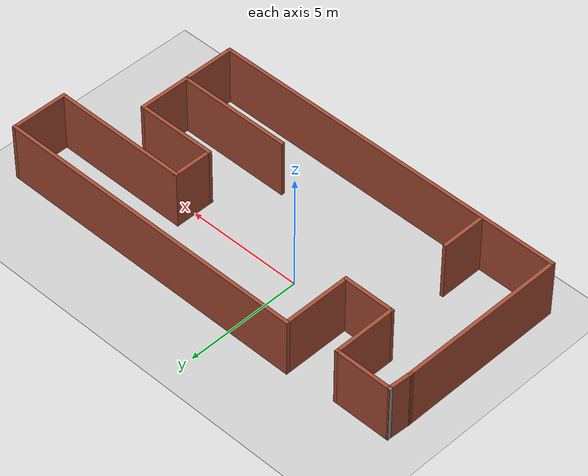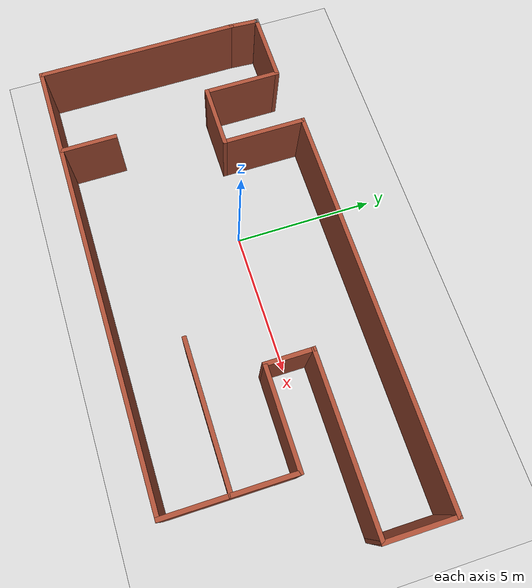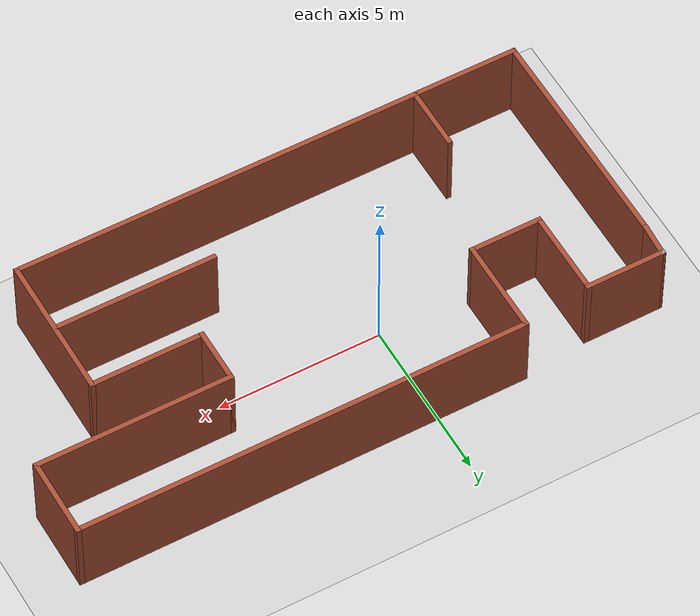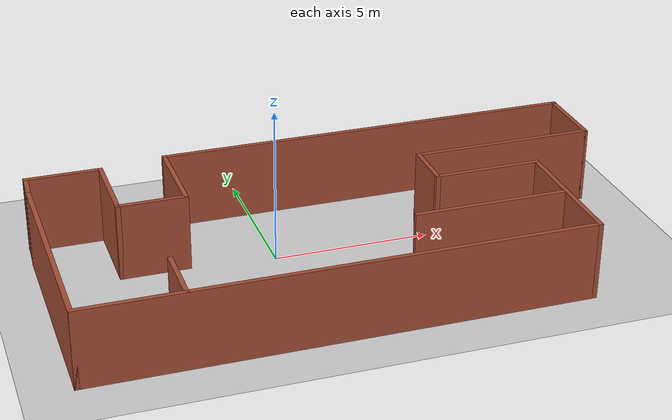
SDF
<sdf version="1.7">
 <world name="default">
  <light name="sun" type="directional">
   <pose>0 0 10 0 -0 0</pose>
   <diffuse>0.8 0.8 0.8 1</diffuse>
   <specular>0.2 0.2 0.2 1</specular>
   <attenuation>
    <range>1000</range>
    <constant>0.9</constant>
    <linear>0.01</linear>
    <quadratic>0.001</quadratic>
   </attenuation>
   <direction>-0.5 0.1 -0.9</direction>
   <spot><inner_angle>0</inner_angle><outer_angle>0</outer_angle><falloff>0</falloff></spot>
  </light>
  <model name="ground_plane">
   <static>1</static>
   <link name="link">
    <collision name="collision">
     <geometry><plane><normal>0 0 1</normal><size>100 100</size></plane></geometry>
     <surface><friction><ode><mu>100</mu><mu2>50</mu2></ode></friction></surface>
    </collision>
    <visual name="visual">
     <cast_shadows>0</cast_shadows>
     <geometry><plane><normal>0 0 1</normal><size>100 100</size></plane></geometry>
     <material>
      <script><uri>file://media/materials/scripts/gazebo.material</uri><name>Gazebo/Grey</name></script>
     </material>
    </visual>
   </link>
  </model>
  <gravity>0 0 -9.8</gravity>
  <magnetic_field>6e-06 2.3e-05 -4.2e-05</magnetic_field>
  <atmosphere type="adiabatic"/>
  <physics type="ode">
   <max_step_size>0.001</max_step_size>
   <real_time_factor>1</real_time_factor>
   <real_time_update_rate>1000</real_time_update_rate>
  </physics>
  <scene><ambient>0.4 0.4 0.4 1</ambient><background>0.7 0.7 0.7 1</background><shadows>1</shadows></scene>
  <spherical_coordinates>
   <surface_model>EARTH_WGS84</surface_model>
   <latitude_deg>0</latitude_deg>
   <longitude_deg>0</longitude_deg>
   <elevation>0</elevation>
   <heading_deg>0</heading_deg>
  </spherical_coordinates>
  <model name="Untitled">
   <pose>1.82246 -0.989479 0 0 -0 0</pose>
   <link name="Wall_0">
    <collision name="Wall_0_Collision">
     <geometry><box><size>7.25 0.15 2.5</size></box></geometry>
     <pose>0 0 1.25 0 -0 0</pose>
    </collision>
    <visual name="Wall_0_Visual">
     <pose>0 0 1.25 0 -0 0</pose>
     <geometry><box><size>7.25 0.15 2.5</size></box></geometry>
     <material>
      <script><uri>file://media/materials/scripts/gazebo.material</uri><name>Gazebo/Bricks</name></script>
      <ambient>1 1 1 1</ambient>
     </material>
     <meta><layer>0</layer></meta>
    </visual>
    <pose>-9.04771 -0.6 0 0 -0 -1.5708</pose>
   </link>
   <link name="Wall_1">
    <collision name="Wall_1_Collision">
     <geometry><box><size>15.75 0.15 2.5</size></box></geometry>
     <pose>0 0 1.25 0 -0 0</pose>
    </collision>
    <visual name="Wall_1_Visual">
     <pose>0 0 1.25 0 -0 0</pose>
     <geometry><box><size>15.75 0.15 2.5</size></box></geometry>
     <material>
      <script><uri>file://media/materials/scripts/gazebo.material</uri><name>Gazebo/Bricks</name></script>
      <ambient>1 1 1 1</ambient>
     </material>
     <meta><layer>0</layer></meta>
    </visual>
    <pose>-1.24771 -4.15 0 0 -0 0</pose>
   </link>
   <link name="Wall_10">
    <collision name="Wall_10_Collision">
     <geometry><box><size>2.75 0.15 2.5</size></box></geometry>
     <pose>0 0 1.25 0 -0 0</pose>
    </collision>
    <visual name="Wall_10_Visual">
     <pose>0 0 1.25 0 -0 0</pose>
     <geometry><box><size>2.75 0.15 2.5</size></box></geometry>
     <material>
      <script><uri>file://media/materials/scripts/gazebo.material</uri><name>Gazebo/Bricks</name></script>
      <ambient>1 1 1 1</ambient>
     </material>
     <meta><layer>0</layer></meta>
    </visual>
    <pose>-6.64771 2.6 0 0 -0 1.5708</pose>
   </link>
   <link name="Wall_11">
    <collision name="Wall_11_Collision">
     <geometry><box><size>2.5 0.15 2.5</size></box></geometry>
     <pose>0 0 1.25 0 -0 0</pose>
    </collision>
    <visual name="Wall_11_Visual">
     <pose>0 0 1.25 0 -0 0</pose>
     <geometry><box><size>2.5 0.15 2.5</size></box></geometry>
     <material>
      <script><uri>file://media/materials/scripts/gazebo.material</uri><name>Gazebo/Bricks</name></script>
      <ambient>1 1 1 1</ambient>
     </material>
     <meta><layer>0</layer></meta>
    </visual>
    <pose>-7.82271 3.9 0 0 -0 3.14159</pose>
   </link>
   <link name="Wall_12">
    <collision name="Wall_12_Collision">
     <geometry><box><size>0.16 0.15 2.5</size></box></geometry>
     <pose>0 0 1.25 0 -0 0</pose>
    </collision>
    <visual name="Wall_12_Visual">
     <pose>0 0 1.25 0 -0 0</pose>
     <geometry><box><size>0.16 0.15 2.5</size></box></geometry>
     <material>
      <script><uri>file://media/materials/scripts/gazebo.material</uri><name>Gazebo/Grey</name></script>
      <ambient>1 1 1 1</ambient>
     </material>
     <meta><layer>0</layer></meta>
    </visual>
    <pose>-8.99271 3.9 0 0 -0 0</pose>
   </link>
   <link name="Wall_13">
    <collision name="Wall_13_Collision">
     <geometry><box><size>1.10189 0.15 2.5</size></box></geometry>
     <pose>0 0 1.25 0 -0 0</pose>
    </collision>
    <visual name="Wall_13_Visual">
     <pose>0 0 1.25 0 -0 0</pose>
     <geometry><box><size>1.10189 0.15 2.5</size></box></geometry>
     <material>
      <script><uri>file://media/materials/scripts/gazebo.material</uri><name>Gazebo/Bricks</name></script>
      <ambient>1 1 1 1</ambient>
     </material>
     <meta><layer>0</layer></meta>
    </visual>
    <pose>-9.01771 3.425 0 0 -0 -1.63387</pose>
   </link>
   <link name="Wall_15">
    <collision name="Wall_15_Collision">
     <geometry><box><size>2 0.15 2.5</size></box></geometry>
     <pose>0 0 1.25 0 -0 0</pose>
    </collision>
    <visual name="Wall_15_Visual">
     <pose>0 0 1.25 0 -0 0</pose>
     <geometry><box><size>2 0.15 2.5</size></box></geometry>
     <material>
      <script><uri>file://media/materials/scripts/gazebo.material</uri><name>Gazebo/Bricks</name></script>
      <ambient>1 1 1 1</ambient>
     </material>
     <meta><layer>0</layer></meta>
    </visual>
    <pose>-5.86977 -3.18486 0 0 -0 1.5708</pose>
   </link>
   <link name="Wall_17">
    <collision name="Wall_17_Collision">
     <geometry><box><size>5 0.15 2.5</size></box></geometry>
     <pose>0 0 1.25 0 -0 0</pose>
    </collision>
    <visual name="Wall_17_Visual">
     <pose>0 0 1.25 0 -0 0</pose>
     <geometry><box><size>5 0.15 2.5</size></box></geometry>
     <material>
      <script><uri>file://media/materials/scripts/gazebo.material</uri><name>Gazebo/Bricks</name></script>
      <ambient>1 1 1 1</ambient>
     </material>
     <meta><layer>0</layer></meta>
    </visual>
    <pose>4.11531 -1.9376 0 0 -0 3.14159</pose>
   </link>
   <link name="Wall_2">
    <collision name="Wall_2_Collision">
     <geometry><box><size>4.5 0.15 2.5</size></box></geometry>
     <pose>0 0 1.25 0 -0 0</pose>
    </collision>
    <visual name="Wall_2_Visual">
     <pose>0 0 1.25 0 -0 0</pose>
     <geometry><box><size>4.5 0.15 2.5</size></box></geometry>
     <material>
      <script><uri>file://media/materials/scripts/gazebo.material</uri><name>Gazebo/Bricks</name></script>
      <ambient>1 1 1 1</ambient>
     </material>
     <meta><layer>0</layer></meta>
    </visual>
    <pose>6.55229 -1.975 0 0 -0 1.5708</pose>
   </link>
   <link name="Wall_3">
    <collision name="Wall_3_Collision">
     <geometry><box><size>3.5 0.15 2.5</size></box></geometry>
     <pose>0 0 1.25 0 -0 0</pose>
    </collision>
    <visual name="Wall_3_Visual">
     <pose>0 0 1.25 0 -0 0</pose>
     <geometry><box><size>3.5 0.15 2.5</size></box></geometry>
     <material>
      <script><uri>file://media/materials/scripts/gazebo.material</uri><name>Gazebo/Bricks</name></script>
      <ambient>1 1 1 1</ambient>
     </material>
     <meta><layer>0</layer></meta>
    </visual>
    <pose>4.87729 0.2 0 0 -0 3.14159</pose>
   </link>
   <link name="Wall_4">
    <collision name="Wall_4_Collision">
     <geometry><box><size>1.75 0.15 2.5</size></box></geometry>
     <pose>0 0 1.25 0 -0 0</pose>
    </collision>
    <visual name="Wall_4_Visual">
     <pose>0 0 1.25 0 -0 0</pose>
     <geometry><box><size>1.75 0.15 2.5</size></box></geometry>
     <material>
      <script><uri>file://media/materials/scripts/gazebo.material</uri><name>Gazebo/Bricks</name></script>
      <ambient>1 1 1 1</ambient>
     </material>
     <meta><layer>0</layer></meta>
    </visual>
    <pose>3.20229 1 0 0 -0 1.5708</pose>
   </link>
   <link name="Wall_5">
    <collision name="Wall_5_Collision">
     <geometry><box><size>6 0.15 2.5</size></box></geometry>
     <pose>0 0 1.25 0 -0 0</pose>
    </collision>
    <visual name="Wall_5_Visual">
     <pose>0 0 1.25 0 -0 0</pose>
     <geometry><box><size>6 0.15 2.5</size></box></geometry>
     <material>
      <script><uri>file://media/materials/scripts/gazebo.material</uri><name>Gazebo/Bricks</name></script>
      <ambient>1 1 1 1</ambient>
     </material>
     <meta><layer>0</layer></meta>
    </visual>
    <pose>6.12729 1.8 0 0 -0 0</pose>
   </link>
   <link name="Wall_6">
    <collision name="Wall_6_Collision">
     <geometry><box><size>2.5 0.15 2.5</size></box></geometry>
     <pose>0 0 1.25 0 -0 0</pose>
    </collision>
    <visual name="Wall_6_Visual">
     <pose>0 0 1.25 0 -0 0</pose>
     <geometry><box><size>2.5 0.15 2.5</size></box></geometry>
     <material>
      <script><uri>file://media/materials/scripts/gazebo.material</uri><name>Gazebo/Bricks</name></script>
      <ambient>1 1 1 1</ambient>
     </material>
     <meta><layer>0</layer></meta>
    </visual>
    <pose>9.05229 2.975 0 0 -0 1.5708</pose>
   </link>
   <link name="Wall_7">
    <collision name="Wall_7_Collision">
     <geometry><box><size>13.75 0.15 2.5</size></box></geometry>
     <pose>0 0 1.25 0 -0 0</pose>
    </collision>
    <visual name="Wall_7_Visual">
     <pose>0 0 1.25 0 -0 0</pose>
     <geometry><box><size>13.75 0.15 2.5</size></box></geometry>
     <material>
      <script><uri>file://media/materials/scripts/gazebo.material</uri><name>Gazebo/Bricks</name></script>
      <ambient>1 1 1 1</ambient>
     </material>
     <meta><layer>0</layer></meta>
    </visual>
    <pose>2.25229 4.15 0 0 -0 3.14159</pose>
   </link>
   <link name="Wall_8">
    <collision name="Wall_8_Collision">
     <geometry><box><size>3 0.15 2.5</size></box></geometry>
     <pose>0 0 1.25 0 -0 0</pose>
    </collision>
    <visual name="Wall_8_Visual">
     <pose>0 0 1.25 0 -0 0</pose>
     <geometry><box><size>3 0.15 2.5</size></box></geometry>
     <material>
      <script><uri>file://media/materials/scripts/gazebo.material</uri><name>Gazebo/Bricks</name></script>
      <ambient>1 1 1 1</ambient>
     </material>
     <meta><layer>0</layer></meta>
    </visual>
    <pose>-4.54771 2.725 0 0 -0 -1.5708</pose>
   </link>
   <link name="Wall_9">
    <collision name="Wall_9_Collision">
     <geometry><box><size>2.25 0.15 2.5</size></box></geometry>
     <pose>0 0 1.25 0 -0 0</pose>
    </collision>
    <visual name="Wall_9_Visual">
     <pose>0 0 1.25 0 -0 0</pose>
     <geometry><box><size>2.25 0.15 2.5</size></box></geometry>
     <material>
      <script><uri>file://media/materials/scripts/gazebo.material</uri><name>Gazebo/Bricks</name></script>
      <ambient>1 1 1 1</ambient>
     </material>
     <meta><layer>0</layer></meta>
    </visual>
    <pose>-5.59771 1.3 0 0 -0 3.14159</pose>
   </link>
   <static>1</static>
  </model>
 </world>
</sdf>
